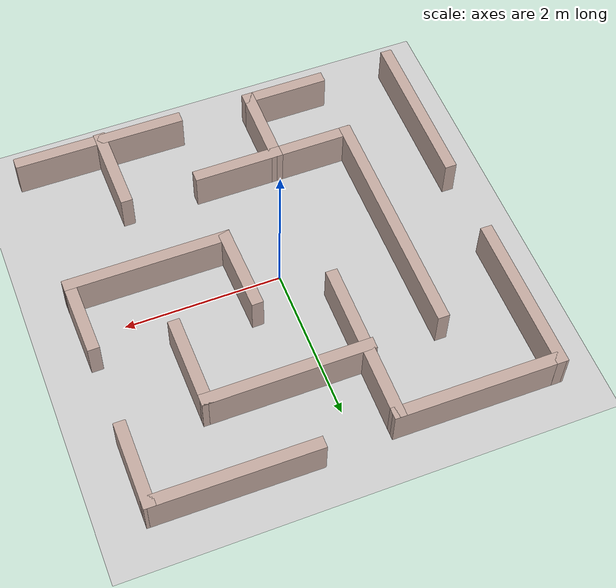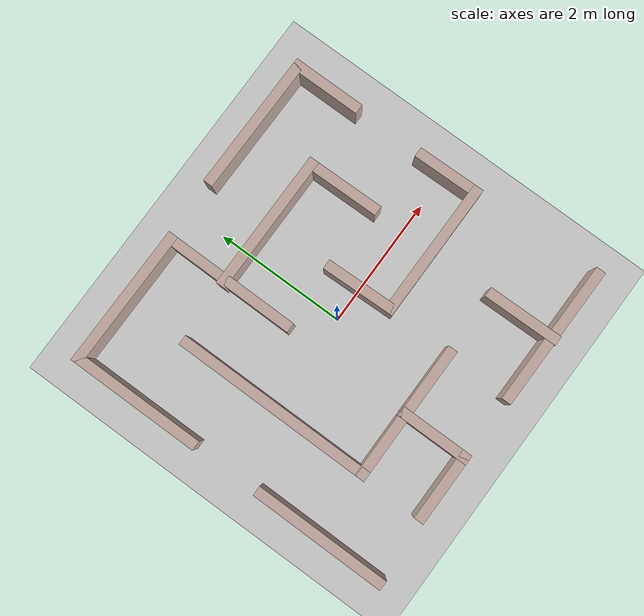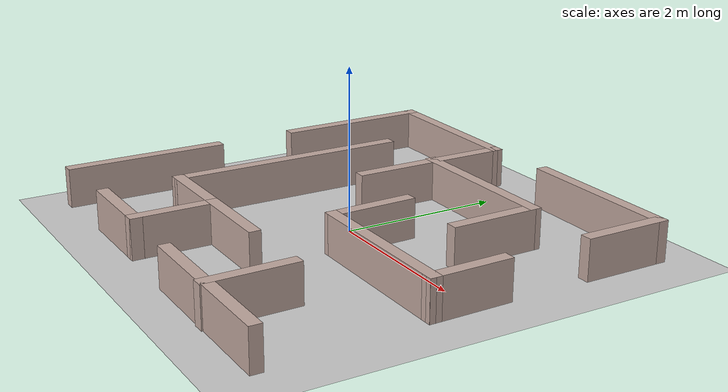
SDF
<sdf version="1.7">
 <world name="default">
  <plugin name="gazebo_ros_state" filename="libgazebo_ros_state.so"/>
  <model name="ground_plane">
   <static>1</static>
   <link name="link">
    <collision name="collision">
     <geometry><plane><normal>0 0 1</normal><size>100 100</size></plane></geometry>
     <surface>
      <contact><collide_bitmask>65535</collide_bitmask></contact>
      <friction><ode><mu>100</mu><mu2>50</mu2></ode></friction>
     </surface>
    </collision>
    <visual name="visual">
     <cast_shadows>0</cast_shadows>
     <geometry><plane><normal>0 0 1</normal><size>100 100</size></plane></geometry>
     <material>
      <script><uri>file://media/materials/scripts/gazebo.material</uri><name>Gazebo/Grey</name></script>
     </material>
    </visual>
   </link>
  </model>
  <light name="sun" type="directional">
   <pose>0 0 10 0 -0 0</pose>
   <diffuse>0.8 0.8 0.8 1</diffuse>
   <specular>0.2 0.2 0.2 1</specular>
   <attenuation>
    <range>1000</range>
    <constant>0.9</constant>
    <linear>0.01</linear>
    <quadratic>0.001</quadratic>
   </attenuation>
   <direction>-0.5 0.1 -0.9</direction>
   <spot><inner_angle>0</inner_angle><outer_angle>0</outer_angle><falloff>0</falloff></spot>
  </light>
  <scene><shadows>0</shadows><ambient>0.4 0.4 0.4 1</ambient><background>0.7 0.7 0.7 1</background></scene>
  <physics type="ode">
   <real_time_update_rate>1000</real_time_update_rate>
   <max_step_size>0.001</max_step_size>
   <real_time_factor>1</real_time_factor>
   <ode>
    <solver>
     <type>quick</type>
     <iters>150</iters>
     <precon_iters>0</precon_iters>
     <sor>1.4</sor>
     <use_dynamic_moi_rescaling>1</use_dynamic_moi_rescaling>
    </solver>
    <constraints>
     <cfm>1e-05</cfm>
     <erp>0.2</erp>
     <contact_max_correcting_vel>2000</contact_max_correcting_vel>
     <contact_surface_layer>0.01</contact_surface_layer>
    </constraints>
   </ode>
  </physics>
  <gravity>0 0 -9.8</gravity>
  <magnetic_field>6e-06 2.3e-05 -4.2e-05</magnetic_field>
  <atmosphere type="adiabatic"/>
  <audio><device>default</device></audio>
  <spherical_coordinates>
   <surface_model>EARTH_WGS84</surface_model>
   <latitude_deg>0</latitude_deg>
   <longitude_deg>0</longitude_deg>
   <elevation>0</elevation>
   <heading_deg>0</heading_deg>
  </spherical_coordinates>
  <include><uri>model://maze_5x5</uri></include>
 </world>
</sdf>

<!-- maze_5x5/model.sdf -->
<sdf version='1.7'>
  <model name='maze_5x5'>
    <pose>0.021964 -0.004206 0 0 -0 0</pose>
    <link name='Wall_0'>
      <collision name='Wall_0_Collision'>
        <geometry>
          <box>
            <size>2.08984 0.15 0.5</size>
          </box>
        </geometry>
        <pose>0 0 0.25 0 -0 0</pose>
      </collision>
      <visual name='Wall_0_Visual'>
        <pose>0 0 0.25 0 -0 0</pose>
        <geometry>
          <box>
            <size>2.08984 0.15 0.5</size>
          </box>
        </geometry>
        <material>
          <script>
            <uri>file://media/materials/scripts/gazebo.material</uri>
            <name>Gazebo/Grey</name>
          </script>
          <ambient>0.760784 0.662745 0.627451 1</ambient>
        </material>
        <meta>
          <layer>0</layer>
        </meta>
      </visual>
      <pose>-2.52746 -1.54329 0 0 -0 1.56719</pose>
    </link>
    <link name='Wall_11'>
      <collision name='Wall_11_Collision'>
        <geometry>
          <box>
            <size>2.0475 0.15 0.5</size>
          </box>
        </geometry>
        <pose>0 0 0.25 0 -0 0</pose>
      </collision>
      <visual name='Wall_11_Visual'>
        <pose>0 0 0.25 0 -0 0</pose>
        <geometry>
          <box>
            <size>2.0475 0.15 0.5</size>
          </box>
        </geometry>
        <material>
          <script>
            <uri>file://media/materials/scripts/gazebo.material</uri>
            <name>Gazebo/Grey</name>
          </script>
          <ambient>0.760784 0.662745 0.627451 1</ambient>
        </material>
        <meta>
          <layer>0</layer>
        </meta>
      </visual>
      <pose>-2.52896 1.52871 0 0 -0 1.5708</pose>
    </link>
    <link name='Wall_12'>
      <collision name='Wall_12_Collision'>
        <geometry>
          <box>
            <size>2.17403 0.15 0.5</size>
          </box>
        </geometry>
        <pose>0 0 0.25 0 -0 0</pose>
      </collision>
      <visual name='Wall_12_Visual'>
        <pose>0 0 0.25 0 -0 0</pose>
        <geometry>
          <box>
            <size>2.17403 0.15 0.5</size>
          </box>
        </geometry>
        <material>
          <script>
            <uri>file://media/materials/scripts/gazebo.material</uri>
            <name>Gazebo/Grey</name>
          </script>
          <ambient>0.760784 0.662745 0.627451 1</ambient>
        </material>
        <meta>
          <layer>0</layer>
        </meta>
      </visual>
      <pose>-1.51696 2.47171 0 0 -0 -0.005435</pose>
    </link>
    <link name='Wall_13'>
      <collision name='Wall_13_Collision'>
        <geometry>
          <box>
            <size>2.11653 0.15 0.5</size>
          </box>
        </geometry>
        <pose>0 0 0.25 0 -0 0</pose>
      </collision>
      <visual name='Wall_13_Visual'>
        <pose>0 0 0.25 0 -0 0</pose>
        <geometry>
          <box>
            <size>2.11653 0.15 0.5</size>
          </box>
        </geometry>
        <material>
          <script>
            <uri>file://media/materials/scripts/gazebo.material</uri>
            <name>Gazebo/Grey</name>
          </script>
          <ambient>0.760784 0.662745 0.627451 1</ambient>
        </material>
        <meta>
          <layer>0</layer>
        </meta>
      </visual>
      <pose>-0.510964 1.48271 0 0 -0 -1.5769</pose>
    </link>
    <link name='Wall_15'>
      <collision name='Wall_15_Collision'>
        <geometry>
          <box>
            <size>2.15103 0.15 0.5</size>
          </box>
        </geometry>
        <pose>0 0 0.25 0 -0 0</pose>
      </collision>
      <visual name='Wall_15_Visual'>
        <pose>0 0 0.25 0 -0 0</pose>
        <geometry>
          <box>
            <size>2.15103 0.15 0.5</size>
          </box>
        </geometry>
        <material>
          <script>
            <uri>file://media/materials/scripts/gazebo.material</uri>
            <name>Gazebo/Grey</name>
          </script>
          <ambient>0.760784 0.662745 0.627451 1</ambient>
        </material>
        <meta>
          <layer>0</layer>
        </meta>
      </visual>
      <pose>0.460536 1.53421 0 0 -0 0</pose>
    </link>
    <link name='Wall_16'>
      <collision name='Wall_16_Collision'>
        <geometry>
          <box>
            <size>1.19614 0.15 0.5</size>
          </box>
        </geometry>
        <pose>0 0 0.25 0 -0 0</pose>
      </collision>
      <visual name='Wall_16_Visual'>
        <pose>0 0 0.25 0 -0 0</pose>
        <geometry>
          <box>
            <size>1.19614 0.15 0.5</size>
          </box>
        </geometry>
        <material>
          <script>
            <uri>file://media/materials/scripts/gazebo.material</uri>
            <name>Gazebo/Grey</name>
          </script>
          <ambient>0.760784 0.662745 0.627451 1</ambient>
        </material>
        <meta>
          <layer>0</layer>
        </meta>
      </visual>
      <pose>1.46704 1.01121 0 0 -0 -1.55933</pose>
    </link>
    <link name='Wall_18'>
      <collision name='Wall_18_Collision'>
        <geometry>
          <box>
            <size>1.13128 0.15 0.5</size>
          </box>
        </geometry>
        <pose>0 0 0.25 0 -0 0</pose>
      </collision>
      <visual name='Wall_18_Visual'>
        <pose>0 0 0.25 0 -0 0</pose>
        <geometry>
          <box>
            <size>1.13128 0.15 0.5</size>
          </box>
        </geometry>
        <material>
          <script>
            <uri>file://media/materials/scripts/gazebo.material</uri>
            <name>Gazebo/Grey</name>
          </script>
          <ambient>0.760784 0.662745 0.627451 1</ambient>
        </material>
        <meta>
          <layer>0</layer>
        </meta>
      </visual>
      <pose>0.485536 -0.014294 0 0 -0 -1.54328</pose>
    </link>
    <link name='Wall_19'>
      <collision name='Wall_19_Collision'>
        <geometry>
          <box>
            <size>2.128 0.15 0.5</size>
          </box>
        </geometry>
        <pose>0 0 0.25 0 -0 0</pose>
      </collision>
      <visual name='Wall_19_Visual'>
        <pose>0 0 0.25 0 -0 0</pose>
        <geometry>
          <box>
            <size>2.128 0.15 0.5</size>
          </box>
        </geometry>
        <material>
          <script>
            <uri>file://media/materials/scripts/gazebo.material</uri>
            <name>Gazebo/Grey</name>
          </script>
          <ambient>0.760784 0.662745 0.627451 1</ambient>
        </material>
        <meta>
          <layer>0</layer>
        </meta>
      </visual>
      <pose>1.48804 -0.504794 0 0 -0 0</pose>
    </link>
    <link name='Wall_2'>
      <collision name='Wall_2_Collision'>
        <geometry>
          <box>
            <size>1.11607 0.15 0.5</size>
          </box>
        </geometry>
        <pose>0 0 0.25 0 -0 0</pose>
      </collision>
      <visual name='Wall_2_Visual'>
        <pose>0 0 0.25 0 -0 0</pose>
        <geometry>
          <box>
            <size>1.11607 0.15 0.5</size>
          </box>
        </geometry>
        <material>
          <script>
            <uri>file://media/materials/scripts/gazebo.material</uri>
            <name>Gazebo/Grey</name>
          </script>
          <ambient>0.760784 0.662745 0.627451 1</ambient>
        </material>
        <meta>
          <layer>0</layer>
        </meta>
      </visual>
      <pose>-1.01796 -2.47079 0 0 -0 0</pose>
    </link>
    <link name='Wall_20'>
      <collision name='Wall_20_Collision'>
        <geometry>
          <box>
            <size>1.03921 0.15 0.5</size>
          </box>
        </geometry>
        <pose>0 0 0.25 0 -0 0</pose>
      </collision>
      <visual name='Wall_20_Visual'>
        <pose>0 0 0.25 0 -0 0</pose>
        <geometry>
          <box>
            <size>1.03921 0.15 0.5</size>
          </box>
        </geometry>
        <material>
          <script>
            <uri>file://media/materials/scripts/gazebo.material</uri>
            <name>Gazebo/Grey</name>
          </script>
          <ambient>0.760784 0.662745 0.627451 1</ambient>
        </material>
        <meta>
          <layer>0</layer>
        </meta>
      </visual>
      <pose>2.46954 -0.060294 0 0 -0 1.58767</pose>
    </link>
    <link name='Wall_22'>
      <collision name='Wall_22_Collision'>
        <geometry>
          <box>
            <size>2.20863 0.15 0.5</size>
          </box>
        </geometry>
        <pose>0 0 0.25 0 -0 0</pose>
      </collision>
      <visual name='Wall_22_Visual'>
        <pose>0 0 0.25 0 -0 0</pose>
        <geometry>
          <box>
            <size>2.20863 0.15 0.5</size>
          </box>
        </geometry>
        <material>
          <script>
            <uri>file://media/materials/scripts/gazebo.material</uri>
            <name>Gazebo/Grey</name>
          </script>
          <ambient>0.760784 0.662745 0.627451 1</ambient>
        </material>
        <meta>
          <layer>0</layer>
        </meta>
      </visual>
      <pose>1.50154 -2.49629 0 0 -0 -0.005342</pose>
    </link>
    <link name='Wall_24'>
      <collision name='Wall_24_Collision'>
        <geometry>
          <box>
            <size>1.15109 0.15 0.5</size>
          </box>
        </geometry>
        <pose>0 0 0.25 0 -0 0</pose>
      </collision>
      <visual name='Wall_24_Visual'>
        <pose>0 0 0.25 0 -0 0</pose>
        <geometry>
          <box>
            <size>1.15109 0.15 0.5</size>
          </box>
        </geometry>
        <material>
          <script>
            <uri>file://media/materials/scripts/gazebo.material</uri>
            <name>Gazebo/Grey</name>
          </script>
          <ambient>0.760784 0.662745 0.627451 1</ambient>
        </material>
        <meta>
          <layer>0</layer>
        </meta>
      </visual>
      <pose>1.46704 -2.01329 0 0 -0 -1.55881</pose>
    </link>
    <link name='Wall_26'>
      <collision name='Wall_26_Collision'>
        <geometry>
          <box>
            <size>2.1358 0.15 0.5</size>
          </box>
        </geometry>
        <pose>0 0 0.25 0 -0 0</pose>
      </collision>
      <visual name='Wall_26_Visual'>
        <pose>0 0 0.25 0 -0 0</pose>
        <geometry>
          <box>
            <size>2.1358 0.15 0.5</size>
          </box>
        </geometry>
        <material>
          <script>
            <uri>file://media/materials/scripts/gazebo.material</uri>
            <name>Gazebo/Grey</name>
          </script>
          <ambient>0.760784 0.662745 0.627451 1</ambient>
        </material>
        <meta>
          <layer>0</layer>
        </meta>
      </visual>
      <pose>1.47354 2.50771 0 0 -0 -0.006549</pose>
    </link>
    <link name='Wall_27'>
      <collision name='Wall_27_Collision'>
        <geometry>
          <box>
            <size>1.11655 0.15 0.5</size>
          </box>
        </geometry>
        <pose>0 0 0.25 0 -0 0</pose>
      </collision>
      <visual name='Wall_27_Visual'>
        <pose>0 0 0.25 0 -0 0</pose>
        <geometry>
          <box>
            <size>1.11655 0.15 0.5</size>
          </box>
        </geometry>
        <material>
          <script>
            <uri>file://media/materials/scripts/gazebo.material</uri>
            <name>Gazebo/Grey</name>
          </script>
          <ambient>0.760784 0.662745 0.627451 1</ambient>
        </material>
        <meta>
          <layer>0</layer>
        </meta>
      </visual>
      <pose>2.46604 2.01771 0 0 -0 -1.5708</pose>
    </link>
    <link name='Wall_3'>
      <collision name='Wall_3_Collision'>
        <geometry>
          <box>
            <size>1.116 0.15 0.5</size>
          </box>
        </geometry>
        <pose>0 0 0.25 0 -0 0</pose>
      </collision>
      <visual name='Wall_3_Visual'>
        <pose>0 0 0.25 0 -0 0</pose>
        <geometry>
          <box>
            <size>1.116 0.15 0.5</size>
          </box>
        </geometry>
        <material>
          <script>
            <uri>file://media/materials/scripts/gazebo.material</uri>
            <name>Gazebo/Grey</name>
          </script>
          <ambient>0.760784 0.662745 0.627451 1</ambient>
        </material>
        <meta>
          <layer>0</layer>
        </meta>
      </visual>
      <pose>-0.534964 -1.98779 0 0 -0 1.5708</pose>
    </link>
    <link name='Wall_4'>
      <collision name='Wall_4_Collision'>
        <geometry>
          <box>
            <size>1.162 0.15 0.5</size>
          </box>
        </geometry>
        <pose>0 0 0.25 0 -0 0</pose>
      </collision>
      <visual name='Wall_4_Visual'>
        <pose>0 0 0.25 0 -0 0</pose>
        <geometry>
          <box>
            <size>1.162 0.15 0.5</size>
          </box>
        </geometry>
        <material>
          <script>
            <uri>file://media/materials/scripts/gazebo.material</uri>
            <name>Gazebo/Grey</name>
          </script>
          <ambient>0.760784 0.662745 0.627451 1</ambient>
        </material>
        <meta>
          <layer>0</layer>
        </meta>
      </visual>
      <pose>-0.028964 -1.50479 0 0 -0 0</pose>
    </link>
    <link name='Wall_6'>
      <collision name='Wall_6_Collision'>
        <geometry>
          <box>
            <size>1.12823 0.15 0.5</size>
          </box>
        </geometry>
        <pose>0 0 0.25 0 -0 0</pose>
      </collision>
      <visual name='Wall_6_Visual'>
        <pose>0 0 0.25 0 -0 0</pose>
        <geometry>
          <box>
            <size>1.12823 0.15 0.5</size>
          </box>
        </geometry>
        <material>
          <script>
            <uri>file://media/materials/scripts/gazebo.material</uri>
            <name>Gazebo/Grey</name>
          </script>
          <ambient>0.760784 0.662745 0.627451 1</ambient>
        </material>
        <meta>
          <layer>0</layer>
        </meta>
      </visual>
      <pose>-1.02396 -1.50629 0 0 -0 -3.13853</pose>
    </link>
    <link name='Wall_9'>
      <collision name='Wall_9_Collision'>
        <geometry>
          <box>
            <size>3.08894 0.15 0.5</size>
          </box>
        </geometry>
        <pose>0 0 0.25 0 -0 0</pose>
      </collision>
      <visual name='Wall_9_Visual'>
        <pose>0 0 0.25 0 -0 0</pose>
        <geometry>
          <box>
            <size>3.08894 0.15 0.5</size>
          </box>
        </geometry>
        <material>
          <script>
            <uri>file://media/materials/scripts/gazebo.material</uri>
            <name>Gazebo/Grey</name>
          </script>
          <ambient>0.760784 0.662745 0.627451 1</ambient>
        </material>
        <meta>
          <layer>0</layer>
        </meta>
      </visual>
      <pose>-1.50946 -0.038294 0 0 -0 1.56841</pose>
    </link>
    <static>1</static>
  </model>
</sdf>
